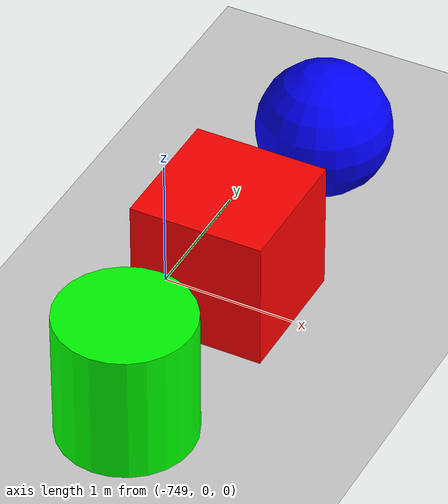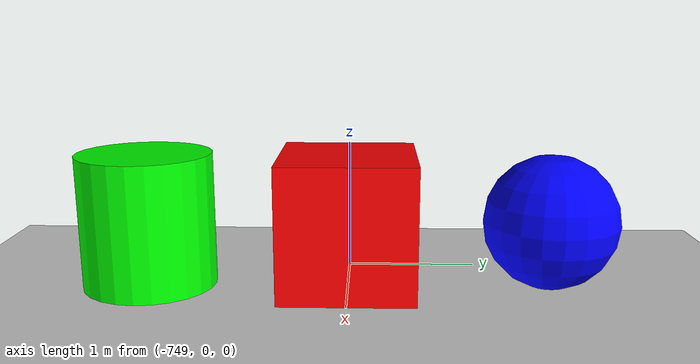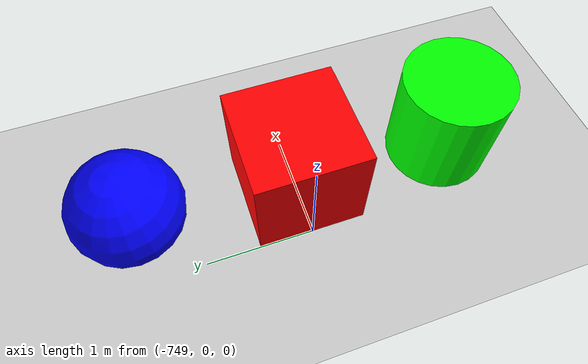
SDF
<?xml version="1.0" ?>
<sdf version="1.6">
  <world name="shapes">
    <model name="ground_plane">
      <static>true</static>
      <link name="link">
        <collision name="collision">
          <geometry>
            <plane>
              <normal>0 0 1</normal>
              <size>100 100</size>
            </plane>
          </geometry>
        </collision>
        <visual name="visual">
          <geometry>
            <plane>
              <normal>0 0 1</normal>
              <size>100 100</size>
            </plane>
          </geometry>
          <material>
            <ambient>0.8 0.8 0.8 1</ambient>
            <diffuse>0.8 0.8 0.8 1</diffuse>
            <specular>0.8 0.8 0.8 1</specular>
          </material>
        </visual>
      </link>
    </model>

    <model name="box_1">
      <static>false</static>
      <pose>-748.5 0 0.5 0 0 0</pose>
      <link name="box_link">
        <inertial>
          <inertia>
            <ixx>1</ixx>
            <ixy>0</ixy>
            <ixz>0</ixz>
            <iyy>1</iyy>
            <iyz>0</iyz>
            <izz>1</izz>
          </inertia>
          <mass>1.0</mass>
        </inertial>
        <collision name="box_collision">
          <geometry>
            <box>
              <size>1 1 1</size>
            </box>
          </geometry>
        </collision>

        <visual name="box_visual">
          <geometry>
            <box>
              <size>1 1 1</size>
            </box>
          </geometry>
          <material>
            <ambient>1 0 0 1</ambient>
            <diffuse>1 0 0 1</diffuse>
            <specular>1 0 0 1</specular>
          </material>
        </visual>
      </link>
    </model>

    <model name="cylinder_1">
      <static>false</static>
      <pose>-748.5 -1.5 0.5 0 0 0</pose>
      <link name="cylinder_link">
        <inertial>
          <inertia>
            <ixx>2</ixx>
            <ixy>0</ixy>
            <ixz>0</ixz>
            <iyy>2</iyy>
            <iyz>0</iyz>
            <izz>2</izz>
          </inertia>
          <mass>2.0</mass>
        </inertial>
        <collision name="cylinder_collision">
          <geometry>
            <cylinder>
              <radius>0.5</radius>
              <length>1.0</length>
            </cylinder>
          </geometry>
        </collision>

        <visual name="cylinder_visual">
          <geometry>
            <cylinder>
              <radius>0.5</radius>
              <length>1.0</length>
            </cylinder>
          </geometry>
          <material>
            <ambient>0 1 0 1</ambient>
            <diffuse>0 1 0 1</diffuse>
            <specular>0 1 0 1</specular>
          </material>
        </visual>
      </link>
    </model>

    <model name="sphere_1">
      <static>false</static>
      <pose>-748.5 1.5 0.5 0 0 0</pose>
      <link name="sphere_link">
        <inertial>
          <inertia>
            <ixx>3</ixx>
            <ixy>0</ixy>
            <ixz>0</ixz>
            <iyy>3</iyy>
            <iyz>0</iyz>
            <izz>3</izz>
          </inertia>
          <mass>3.0</mass>
        </inertial>
        <collision name="sphere_collision">
          <geometry>
            <sphere>
              <radius>0.5</radius>
            </sphere>
          </geometry>
        </collision>

        <visual name="sphere_visual">
          <geometry>
            <sphere>
              <radius>0.5</radius>
            </sphere>
          </geometry>
          <material>
            <ambient>0 0 1 1</ambient>
            <diffuse>0 0 1 1</diffuse>
            <specular>0 0 1 1</specular>
          </material>
        </visual>
      </link>
    </model>

  </world>
</sdf>
